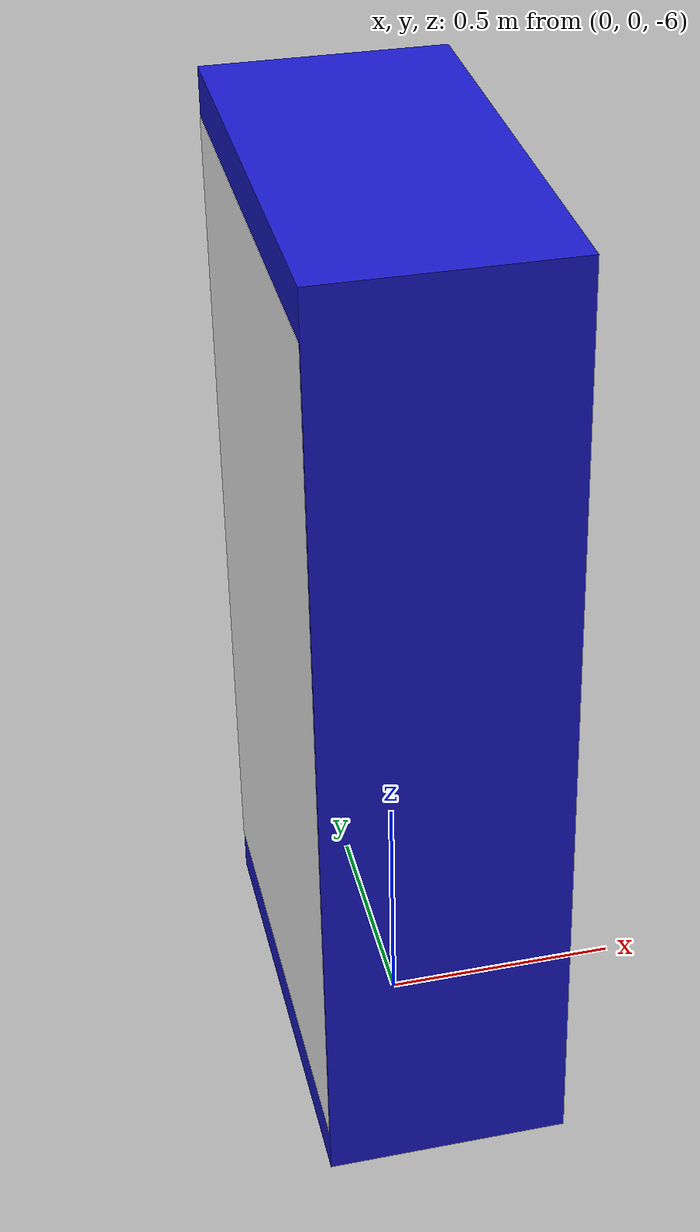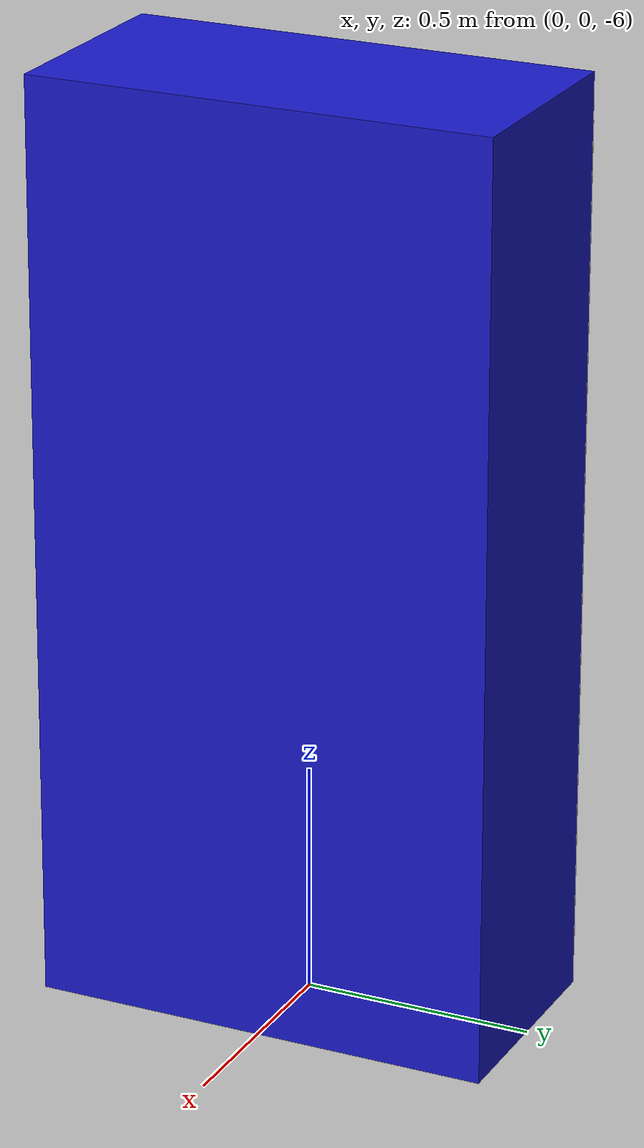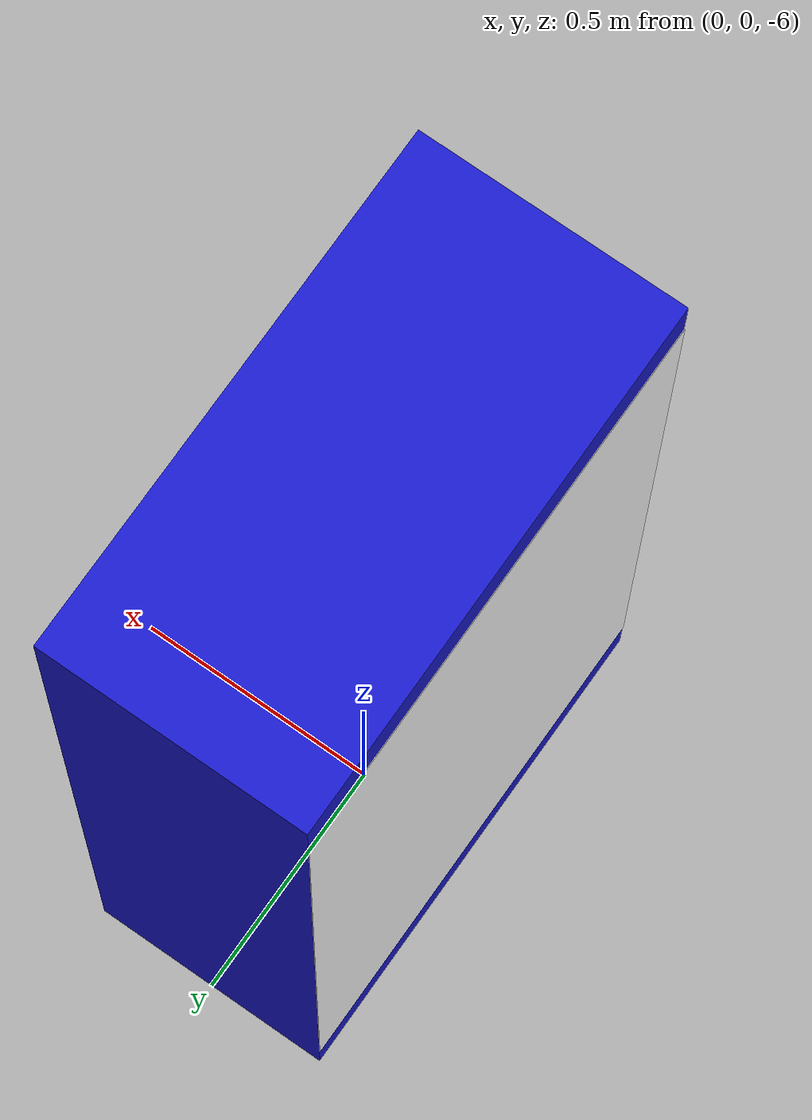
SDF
<sdf version="1.6">
 <world name="default">
  <plugin filename="gz-sim-physics-system" name="gz::sim::systems::Physics"/>
  <plugin filename="gz-sim-user-commands-system" name="gz::sim::systems::UserCommands"/>
  <plugin filename="gz-sim-scene-broadcaster-system" name="gz::sim::systems::SceneBroadcaster"/>
  <plugin filename="gz-sim-sensors-system" name="gz::sim::systems::Sensors">
   <render_engine>ogre2</render_engine>
  </plugin>
  <plugin filename="gz-sim-imu-system" name="gz::sim::systems::Imu"/>
  <include><uri>https://fuel.gazebosim.org/1.0/OpenRobotics/models/Ground Plane</uri></include>
  <include><uri>https://fuel.gazebosim.org/1.0/OpenRobotics/models/Sun</uri></include>
  <physics type="ode">
   <real_time_update_rate>1000.0</real_time_update_rate>
   <max_step_size>0.001</max_step_size>
   <real_time_factor>1</real_time_factor>
   <ode>
    <solver>
     <type>quick</type>
     <iters>150</iters>
     <precon_iters>0</precon_iters>
     <sor>1.400000</sor>
     <use_dynamic_moi_rescaling>1</use_dynamic_moi_rescaling>
    </solver>
    <constraints>
     <cfm>0.00001</cfm>
     <erp>0.2</erp>
     <contact_max_correcting_vel>2000.000000</contact_max_correcting_vel>
     <contact_surface_layer>0.01000</contact_surface_layer>
    </constraints>
   </ode>
  </physics>
  <model name="video_screen_0">
   <pose>0 0 -5 0 0 0</pose>
   <static>1</static>
   <link name="link">
    <collision name="collision"><geometry><box><size>0.5 1.0 1.8</size></box></geometry></collision>
    <visual name="visual">
     <geometry><box><size>0.5 1.0 2.0</size></box></geometry>
     <material><ambient>0.1 0.1 0.8 1</ambient><diffuse>0.1 0.1 0.8 1</diffuse></material>
    </visual>
    <visual name="imageFace">
     <pose>-0.251 0 0 0 0 0</pose>
     <geometry><box><size>0.001 1.0 1.8</size></box></geometry>
     <material>
      <ambient>1 1 1 1</ambient>
      <diffuse>1 1 1 1</diffuse>
      <specular>0.1 0.1 0.1 1</specular>
      <pbr><metal><albedo_map>reste.jpg</albedo_map></metal></pbr>
     </material>
    </visual>
   </link>
  </model>
  <model name="video_screen_1">
   <pose>0 0 -5 0 0 0</pose>
   <static>1</static>
   <link name="link">
    <collision name="collision"><geometry><box><size>0.5 1.0 1.8</size></box></geometry></collision>
    <visual name="visual">
     <geometry><box><size>0.5 1.0 2.0</size></box></geometry>
     <material><ambient>0.1 0.1 0.8 1</ambient><diffuse>0.1 0.1 0.8 1</diffuse></material>
    </visual>
    <visual name="imageFace">
     <pose>-0.251 0 0 0 0 0</pose>
     <geometry><box><size>0.001 1.0 1.8</size></box></geometry>
     <material>
      <ambient>1 1 1 1</ambient>
      <diffuse>1 1 1 1</diffuse>
      <specular>0.1 0.1 0.1 1</specular>
      <pbr><metal><albedo_map>start.png</albedo_map></metal></pbr>
     </material>
    </visual>
   </link>
  </model>
  <model name="video_screen_2">
   <pose>0 0 -5 0 0 0</pose>
   <static>1</static>
   <link name="link">
    <collision name="collision"><geometry><box><size>0.5 1.0 1.8</size></box></geometry></collision>
    <visual name="visual">
     <geometry><box><size>0.5 1.0 2.0</size></box></geometry>
     <material><ambient>0.1 0.1 0.8 1</ambient><diffuse>0.1 0.1 0.8 1</diffuse></material>
    </visual>
    <visual name="imageFace">
     <pose>-0.251 0 0 0 0 0</pose>
     <geometry><box><size>0.001 1.0 1.8</size></box></geometry>
     <material>
      <ambient>1 1 1 1</ambient>
      <diffuse>1 1 1 1</diffuse>
      <specular>0.1 0.1 0.1 1</specular>
      <pbr><metal><albedo_map>stop.png</albedo_map></metal></pbr>
     </material>
    </visual>
   </link>
  </model>
 </world>
</sdf>
